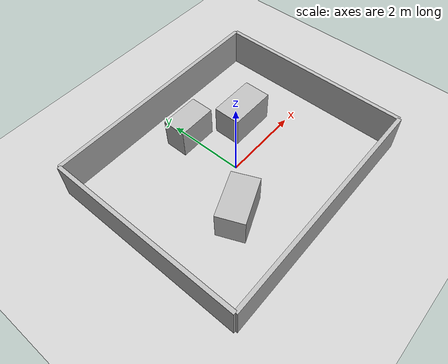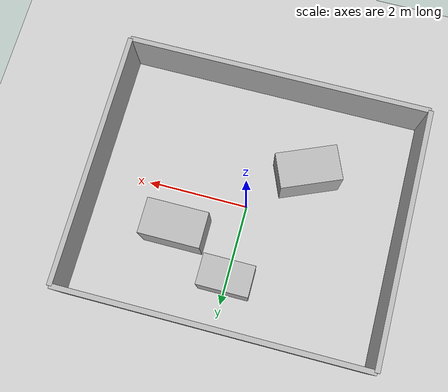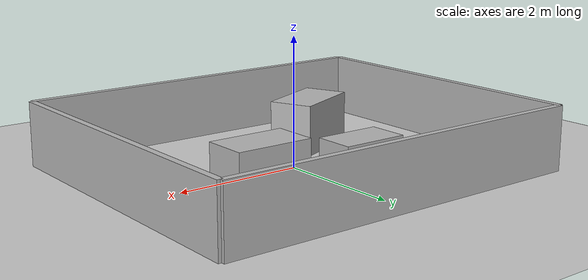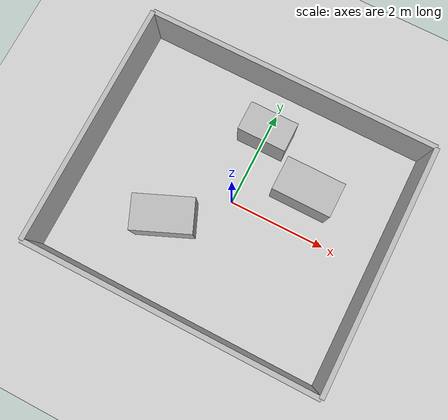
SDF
<?xml version="1.0" ?>
<sdf version="1.6">
  <world name="hotel_room">

    <include>
      <uri>model://ground_plane</uri>
    </include>
    <include>
      <uri>model://sun</uri>
    </include>

    <!-- Outer walls -->
    <model name="wall_north">
      <static>true</static>
      <pose>0 2.5 0.5 0 0 0</pose>
      <link name="link">
        <collision name="collision">
          <geometry><box><size>6 0.1 1</size></box></geometry>
        </collision>
        <visual name="visual">
          <geometry><box><size>6 0.1 1</size></box></geometry>
        </visual>
      </link>
    </model>
    <model name="wall_south">
      <static>true</static>
      <pose>0 -2.5 0.5 0 0 0</pose>
      <link name="link">
        <collision name="collision">
          <geometry><box><size>6 0.1 1</size></box></geometry>
        </collision>
        <visual name="visual">
          <geometry><box><size>6 0.1 1</size></box></geometry>
        </visual>
      </link>
    </model>
    <model name="wall_east">
      <static>true</static>
      <pose>3 0 0.5 0 0 1.5708</pose>
      <link name="link">
        <collision name="collision">
          <geometry><box><size>5 0.1 1</size></box></geometry>
        </collision>
        <visual name="visual">
          <geometry><box><size>5 0.1 1</size></box></geometry>
        </visual>
      </link>
    </model>
    <model name="wall_west">
      <static>true</static>
      <pose>-3 0 0.5 0 0 1.5708</pose>
      <link name="link">
        <collision name="collision">
          <geometry><box><size>5 0.1 1</size></box></geometry>
        </collision>
        <visual name="visual">
          <geometry><box><size>5 0.1 1</size></box></geometry>
        </visual>
      </link>
    </model>

    <!-- "Conference tables" as box obstacles -->
    <model name="table_1">
      <static>true</static>
      <pose>1.2 0.8 0.4 0 0 0</pose>
      <link name="link">
        <collision name="collision">
          <geometry><box><size>1.2 0.7 0.8</size></box></geometry>
        </collision>
        <visual name="visual">
          <geometry><box><size>1.2 0.7 0.8</size></box></geometry>
        </visual>
      </link>
    </model>
    <model name="table_2">
      <static>true</static>
      <pose>-1.0 -0.9 0.4 0 0 0.4</pose>
      <link name="link">
        <collision name="collision">
          <geometry><box><size>1.2 0.7 0.8</size></box></geometry>
        </collision>
        <visual name="visual">
          <geometry><box><size>1.2 0.7 0.8</size></box></geometry>
        </visual>
      </link>
    </model>
    <model name="table_3">
      <static>true</static>
      <pose>0 1.5 0.4 0 0 0</pose>
      <link name="link">
        <collision name="collision">
          <geometry><box><size>1.0 0.6 0.8</size></box></geometry>
        </collision>
        <visual name="visual">
          <geometry><box><size>1.0 0.6 0.8</size></box></geometry>
        </visual>
      </link>
    </model>

  </world>
</sdf>
